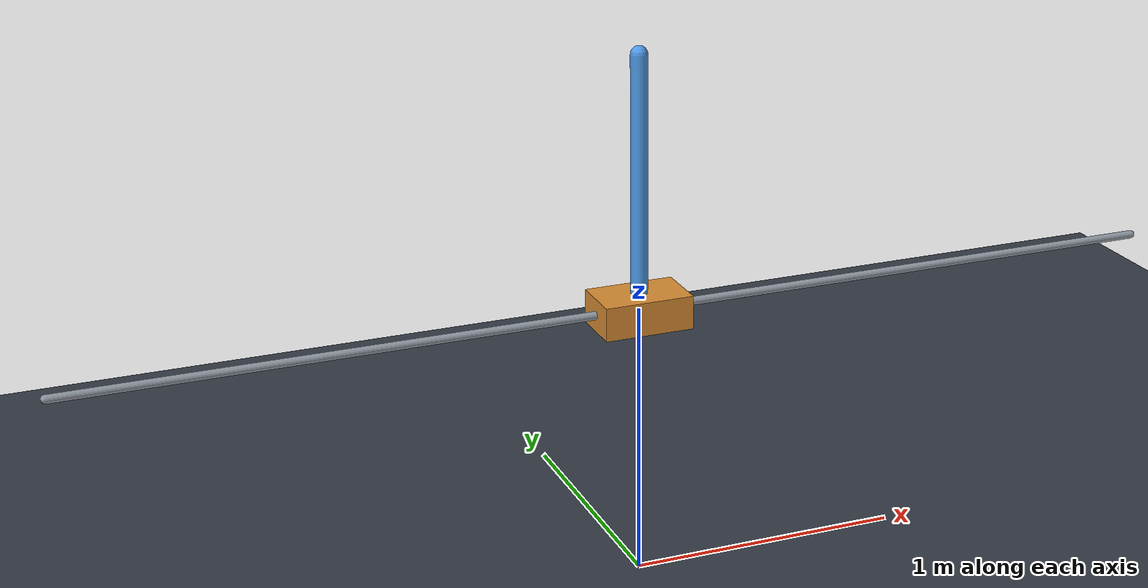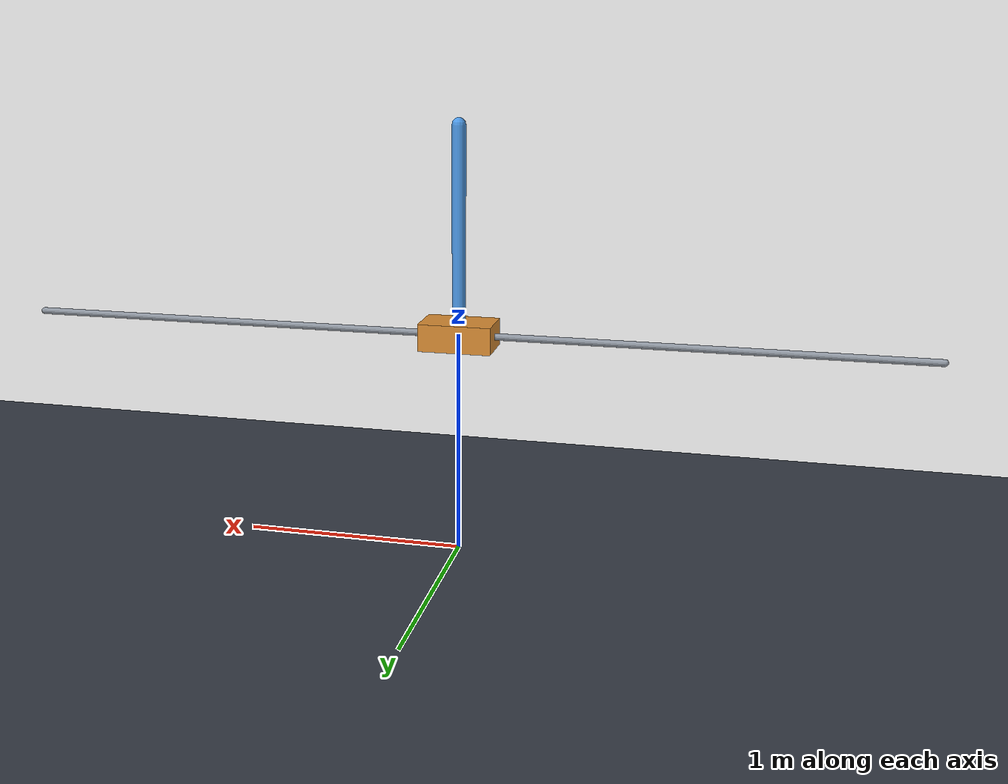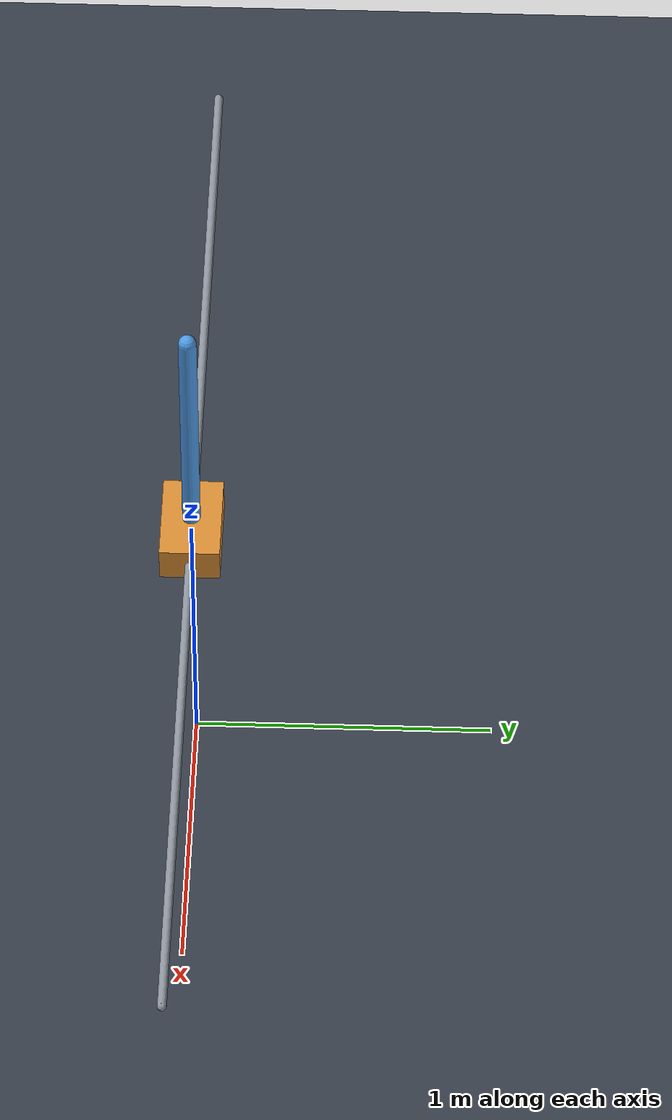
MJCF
<!-- MuJoCo Lab model, written for this site (stella-nova/pages/mujoco-lab). -->
<mujoco model="cartpole">
  <option timestep="0.002" integrator="RK4"/>
  <visual><global azimuth="90" elevation="-10"/></visual>
  <asset>
    <texture name="grid" type="2d" builtin="checker" rgb1=".18 .2 .24" rgb2=".24 .27 .31" width="64" height="64"/>
    <material name="grid" texture="grid" texrepeat="8 8" texuniform="true"/>
  </asset>
  <default><geom contype="0" conaffinity="0"/></default>
  <worldbody>
    <light pos="0 -1 3" dir="0 .3 -1"/>
    <geom name="floor" type="plane" size="4 4 .1" material="grid"/>
    <geom name="rail" type="capsule" fromto="-2 0 1 2 0 1" size=".015" rgba=".55 .58 .62 1"/>
    <body name="cart" pos="0 0 1">
      <joint name="slider" type="slide" axis="1 0 0" range="-1.8 1.8" damping="0.2"/>
      <geom name="cart" type="box" size=".16 .1 .06" mass="1" rgba=".85 .55 .2 1"/>
      <body name="pole">
        <joint name="hinge" type="hinge" axis="0 1 0" damping="0.002"/>
        <geom name="pole" type="capsule" fromto="0 0 0 0 0 .9" size=".03" mass=".2" rgba=".3 .6 .9 1"/>
      </body>
    </body>
  </worldbody>
  <actuator><motor name="push" joint="slider" gear="25" ctrlrange="-1 1"/></actuator>
  <sensor>
    <jointpos name="cart x" joint="slider"/>
    <jointpos name="pole angle" joint="hinge"/>
  </sensor>
  <keyframe><key name="near upright" qpos="0 0.05"/></keyframe>
</mujoco>
